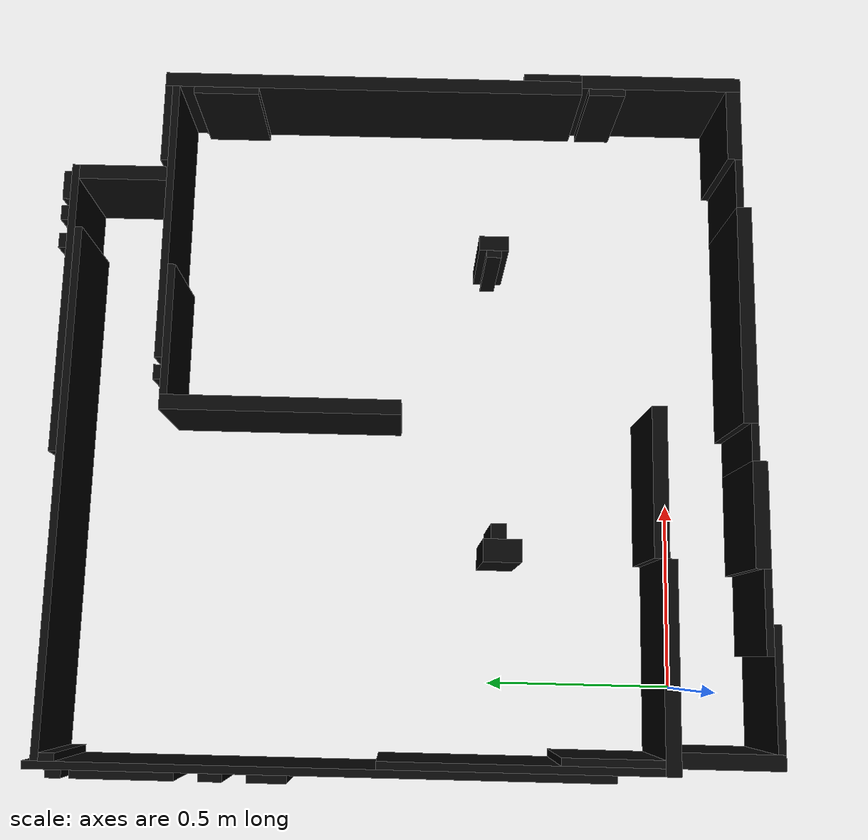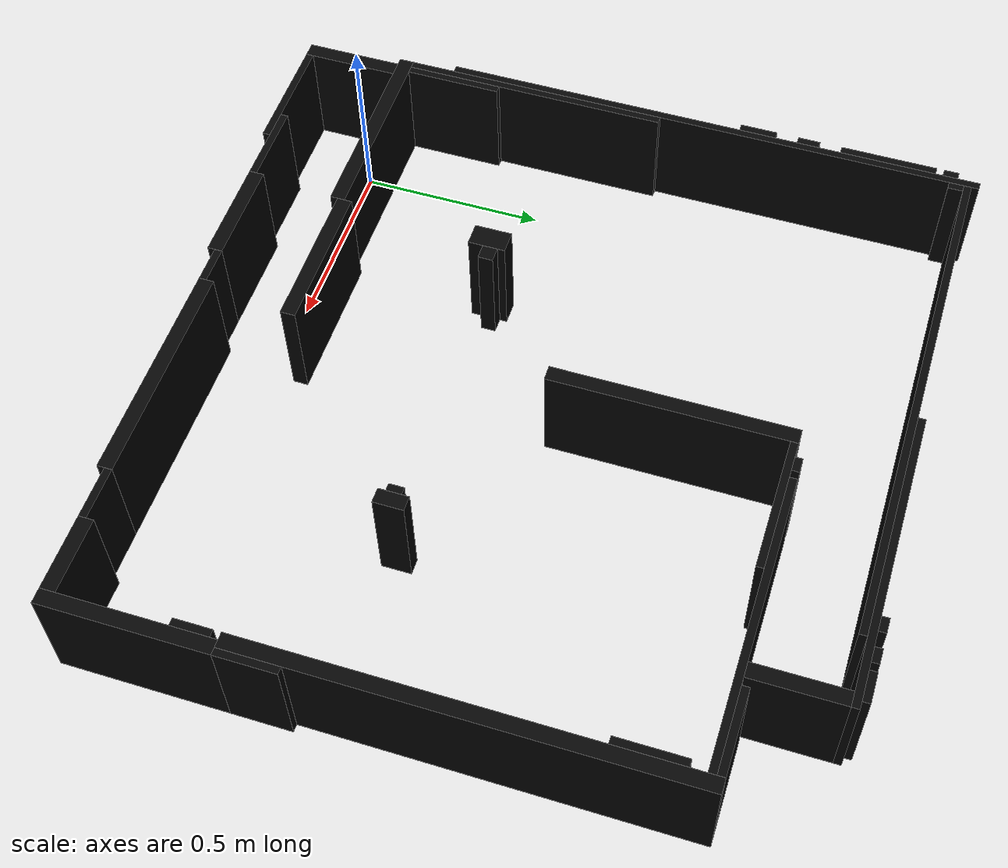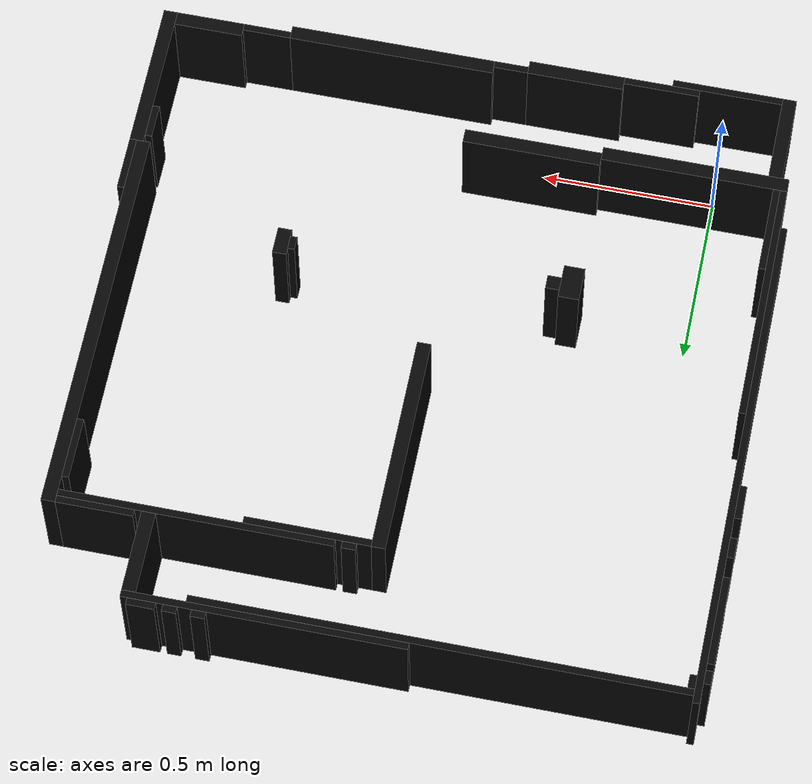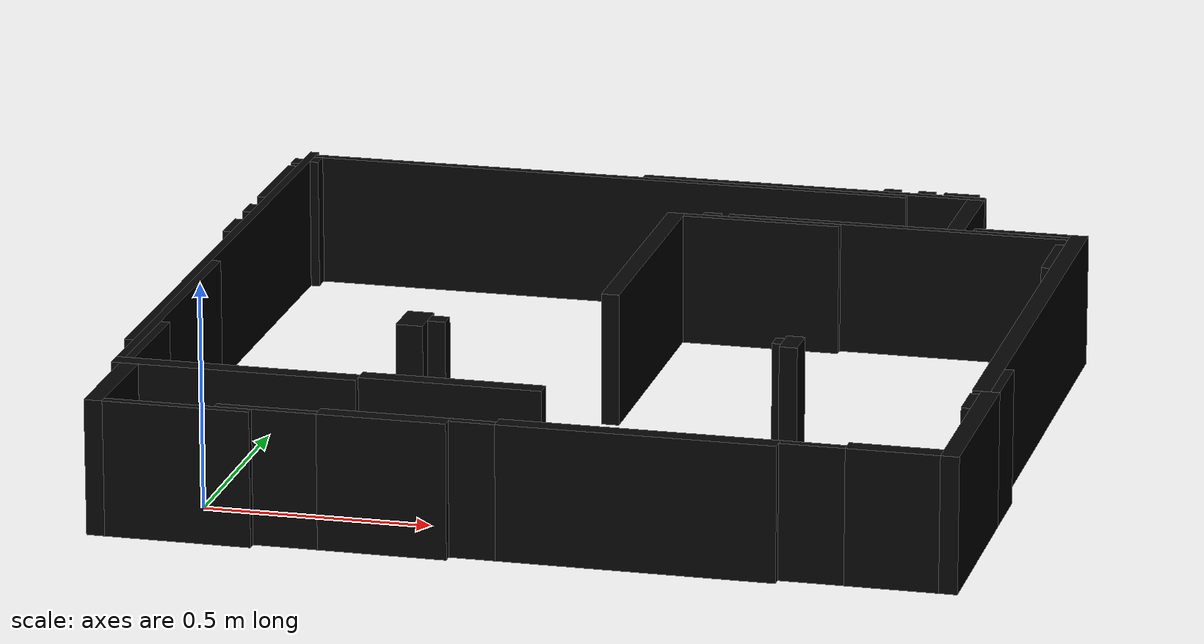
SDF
<?xml version="1.0" ?>
<sdf version="1.9">
  <world name="arena_shared_walls">
    <physics name="1ms" type="ignored"><max_step_size>0.001</max_step_size><real_time_factor>1.0</real_time_factor></physics>
    <plugin filename="gz-sim-physics-system" name="gz::sim::systems::Physics"/>
    <plugin filename="gz-sim-user-commands-system" name="gz::sim::systems::UserCommands"/>
    <plugin filename="gz-sim-scene-broadcaster-system" name="gz::sim::systems::SceneBroadcaster"/>
    <light name="sun" type="directional"><pose>0 0 10 0 0 0</pose><diffuse>1 1 1 1</diffuse><specular>0.2 0.2 0.2 1</specular><direction>-0.5 0.5 -1</direction></light>
    <model name="walls">
      <static>true</static>
      <link name="wall_0">
        <pose>1.6290 0.8540 0.1500 0 0 0</pose>
        <collision name="collision"><geometry><box><size>0.0400 1.1600 0.3000</size></box></geometry></collision>
        <visual name="visual"><geometry><box><size>0.0400 1.1600 0.3000</size></box></geometry><material><ambient>0.02 0.02 0.02 1</ambient><diffuse>0.02 0.02 0.02 1</diffuse></material></visual>
      </link>
      <link name="wall_1">
        <pose>-0.2210 0.9340 0.1500 0 0 0</pose>
        <collision name="collision"><geometry><box><size>0.0200 1.4800 0.3000</size></box></geometry></collision>
        <visual name="visual"><geometry><box><size>0.0200 1.4800 0.3000</size></box></geometry><material><ambient>0.02 0.02 0.02 1</ambient><diffuse>0.02 0.02 0.02 1</diffuse></material></visual>
      </link>
      <link name="wall_2">
        <pose>0.4890 1.6440 0.1500 0 0 0</pose>
        <collision name="collision"><geometry><box><size>1.4000 0.0200 0.3000</size></box></geometry></collision>
        <visual name="visual"><geometry><box><size>1.4000 0.0200 0.3000</size></box></geometry><material><ambient>0.02 0.02 0.02 1</ambient><diffuse>0.02 0.02 0.02 1</diffuse></material></visual>
      </link>
      <link name="wall_3">
        <pose>0.7090 1.0740 0.1500 0 0 0</pose>
        <collision name="collision"><geometry><box><size>0.0400 0.6400 0.3000</size></box></geometry></collision>
        <visual name="visual"><geometry><box><size>0.0400 0.6400 0.3000</size></box></geometry><material><ambient>0.02 0.02 0.02 1</ambient><diffuse>0.02 0.02 0.02 1</diffuse></material></visual>
      </link>
      <link name="wall_4">
        <pose>0.9890 -0.1660 0.1500 0 0 0</pose>
        <collision name="collision"><geometry><box><size>0.6000 0.0400 0.3000</size></box></geometry></collision>
        <visual name="visual"><geometry><box><size>0.6000 0.0400 0.3000</size></box></geometry><material><ambient>0.02 0.02 0.02 1</ambient><diffuse>0.02 0.02 0.02 1</diffuse></material></visual>
      </link>
      <link name="wall_5">
        <pose>0.0590 0.0540 0.1500 0 0 0</pose>
        <collision name="collision"><geometry><box><size>0.5400 0.0400 0.3000</size></box></geometry></collision>
        <visual name="visual"><geometry><box><size>0.5400 0.0400 0.3000</size></box></geometry><material><ambient>0.02 0.02 0.02 1</ambient><diffuse>0.02 0.02 0.02 1</diffuse></material></visual>
      </link>
      <link name="wall_6">
        <pose>1.6490 0.0540 0.1500 0 0 0</pose>
        <collision name="collision"><geometry><box><size>0.0400 0.4400 0.3000</size></box></geometry></collision>
        <visual name="visual"><geometry><box><size>0.0400 0.4400 0.3000</size></box></geometry><material><ambient>0.02 0.02 0.02 1</ambient><diffuse>0.02 0.02 0.02 1</diffuse></material></visual>
      </link>
      <link name="wall_7">
        <pose>0.9690 1.6640 0.1500 0 0 0</pose>
        <collision name="collision"><geometry><box><size>0.8000 0.0200 0.3000</size></box></geometry></collision>
        <visual name="visual"><geometry><box><size>0.8000 0.0200 0.3000</size></box></geometry><material><ambient>0.02 0.02 0.02 1</ambient><diffuse>0.02 0.02 0.02 1</diffuse></material></visual>
      </link>
      <link name="wall_8">
        <pose>0.5290 0.0740 0.1500 0 0 0</pose>
        <collision name="collision"><geometry><box><size>0.4000 0.0400 0.3000</size></box></geometry></collision>
        <visual name="visual"><geometry><box><size>0.4000 0.0400 0.3000</size></box></geometry><material><ambient>0.02 0.02 0.02 1</ambient><diffuse>0.02 0.02 0.02 1</diffuse></material></visual>
      </link>
      <link name="wall_9">
        <pose>1.2190 1.4040 0.1500 0 0 0</pose>
        <collision name="collision"><geometry><box><size>0.7800 0.0200 0.3000</size></box></geometry></collision>
        <visual name="visual"><geometry><box><size>0.7800 0.0200 0.3000</size></box></geometry><material><ambient>0.02 0.02 0.02 1</ambient><diffuse>0.02 0.02 0.02 1</diffuse></material></visual>
      </link>
      <link name="wall_10">
        <pose>-0.2010 0.4340 0.1500 0 0 0</pose>
        <collision name="collision"><geometry><box><size>0.0200 0.7200 0.3000</size></box></geometry></collision>
        <visual name="visual"><geometry><box><size>0.0200 0.7200 0.3000</size></box></geometry><material><ambient>0.02 0.02 0.02 1</ambient><diffuse>0.02 0.02 0.02 1</diffuse></material></visual>
      </link>
      <link name="wall_11">
        <pose>0.4490 -0.1860 0.1500 0 0 0</pose>
        <collision name="collision"><geometry><box><size>0.2800 0.0400 0.3000</size></box></geometry></collision>
        <visual name="visual"><geometry><box><size>0.2800 0.0400 0.3000</size></box></geometry><material><ambient>0.02 0.02 0.02 1</ambient><diffuse>0.02 0.02 0.02 1</diffuse></material></visual>
      </link>
      <link name="wall_12">
        <pose>-0.1710 -0.0960 0.1500 0 0 0</pose>
        <collision name="collision"><geometry><box><size>0.0400 0.2600 0.3000</size></box></geometry></collision>
        <visual name="visual"><geometry><box><size>0.0400 0.2600 0.3000</size></box></geometry><material><ambient>0.02 0.02 0.02 1</ambient><diffuse>0.02 0.02 0.02 1</diffuse></material></visual>
      </link>
      <link name="wall_13">
        <pose>1.3490 1.5340 0.1500 0 0 0</pose>
        <collision name="collision"><geometry><box><size>0.0400 0.2400 0.3000</size></box></geometry></collision>
        <visual name="visual"><geometry><box><size>0.0400 0.2400 0.3000</size></box></geometry><material><ambient>0.02 0.02 0.02 1</ambient><diffuse>0.02 0.02 0.02 1</diffuse></material></visual>
      </link>
      <link name="wall_14">
        <pose>1.5290 -0.1460 0.1500 0 0 0</pose>
        <collision name="collision"><geometry><box><size>0.2000 0.0400 0.3000</size></box></geometry></collision>
        <visual name="visual"><geometry><box><size>0.2000 0.0400 0.3000</size></box></geometry><material><ambient>0.02 0.02 0.02 1</ambient><diffuse>0.02 0.02 0.02 1</diffuse></material></visual>
      </link>
      <link name="wall_15">
        <pose>0.9090 1.3840 0.1500 0 0 0</pose>
        <collision name="collision"><geometry><box><size>0.3600 0.0200 0.3000</size></box></geometry></collision>
        <visual name="visual"><geometry><box><size>0.3600 0.0200 0.3000</size></box></geometry><material><ambient>0.02 0.02 0.02 1</ambient><diffuse>0.02 0.02 0.02 1</diffuse></material></visual>
      </link>
      <link name="wall_16">
        <pose>0.0090 -0.2160 0.1500 0 0 0</pose>
        <collision name="collision"><geometry><box><size>0.3200 0.0200 0.3000</size></box></geometry></collision>
        <visual name="visual"><geometry><box><size>0.3200 0.0200 0.3000</size></box></geometry><material><ambient>0.02 0.02 0.02 1</ambient><diffuse>0.02 0.02 0.02 1</diffuse></material></visual>
      </link>
      <link name="wall_17">
        <pose>0.3390 0.4840 0.1500 0 0 0</pose>
        <collision name="collision"><geometry><box><size>0.0600 0.1000 0.3000</size></box></geometry></collision>
        <visual name="visual"><geometry><box><size>0.0600 0.1000 0.3000</size></box></geometry><material><ambient>0.02 0.02 0.02 1</ambient><diffuse>0.02 0.02 0.02 1</diffuse></material></visual>
      </link>
      <link name="wall_18">
        <pose>-0.2410 1.4240 0.1500 0 0 0</pose>
        <collision name="collision"><geometry><box><size>0.0200 0.2600 0.3000</size></box></geometry></collision>
        <visual name="visual"><geometry><box><size>0.0200 0.2600 0.3000</size></box></geometry><material><ambient>0.02 0.02 0.02 1</ambient><diffuse>0.02 0.02 0.02 1</diffuse></material></visual>
      </link>
      <link name="wall_19">
        <pose>-0.1810 0.2040 0.1500 0 0 0</pose>
        <collision name="collision"><geometry><box><size>0.0200 0.2600 0.3000</size></box></geometry></collision>
        <visual name="visual"><geometry><box><size>0.0200 0.2600 0.3000</size></box></geometry><material><ambient>0.02 0.02 0.02 1</ambient><diffuse>0.02 0.02 0.02 1</diffuse></material></visual>
      </link>
      <link name="wall_20">
        <pose>1.4990 1.4240 0.1500 0 0 0</pose>
        <collision name="collision"><geometry><box><size>0.2200 0.0200 0.3000</size></box></geometry></collision>
        <visual name="visual"><geometry><box><size>0.2200 0.0200 0.3000</size></box></geometry><material><ambient>0.02 0.02 0.02 1</ambient><diffuse>0.02 0.02 0.02 1</diffuse></material></visual>
      </link>
      <link name="wall_21">
        <pose>0.1990 -0.1960 0.1500 0 0 0</pose>
        <collision name="collision"><geometry><box><size>0.2200 0.0200 0.3000</size></box></geometry></collision>
        <visual name="visual"><geometry><box><size>0.2200 0.0200 0.3000</size></box></geometry><material><ambient>0.02 0.02 0.02 1</ambient><diffuse>0.02 0.02 0.02 1</diffuse></material></visual>
      </link>
      <link name="wall_22">
        <pose>1.5990 1.2640 0.1500 0 0 0</pose>
        <collision name="collision"><geometry><box><size>0.0200 0.1800 0.3000</size></box></geometry></collision>
        <visual name="visual"><geometry><box><size>0.0200 0.1800 0.3000</size></box></geometry><material><ambient>0.02 0.02 0.02 1</ambient><diffuse>0.02 0.02 0.02 1</diffuse></material></visual>
      </link>
      <link name="wall_23">
        <pose>1.1690 0.5140 0.1500 0 0 0</pose>
        <collision name="collision"><geometry><box><size>0.0400 0.0800 0.3000</size></box></geometry></collision>
        <visual name="visual"><geometry><box><size>0.0400 0.0800 0.3000</size></box></geometry><material><ambient>0.02 0.02 0.02 1</ambient><diffuse>0.02 0.02 0.02 1</diffuse></material></visual>
      </link>
      <link name="wall_24">
        <pose>1.6590 0.3540 0.1500 0 0 0</pose>
        <collision name="collision"><geometry><box><size>0.0200 0.1600 0.3000</size></box></geometry></collision>
        <visual name="visual"><geometry><box><size>0.0200 0.1600 0.3000</size></box></geometry><material><ambient>0.02 0.02 0.02 1</ambient><diffuse>0.02 0.02 0.02 1</diffuse></material></visual>
      </link>
      <link name="wall_25">
        <pose>1.3590 -0.1560 0.1500 0 0 0</pose>
        <collision name="collision"><geometry><box><size>0.1400 0.0200 0.3000</size></box></geometry></collision>
        <visual name="visual"><geometry><box><size>0.1400 0.0200 0.3000</size></box></geometry><material><ambient>0.02 0.02 0.02 1</ambient><diffuse>0.02 0.02 0.02 1</diffuse></material></visual>
      </link>
      <link name="wall_26">
        <pose>-0.2410 1.0640 0.1500 0 0 0</pose>
        <collision name="collision"><geometry><box><size>0.0200 0.1000 0.3000</size></box></geometry></collision>
        <visual name="visual"><geometry><box><size>0.0200 0.1000 0.3000</size></box></geometry><material><ambient>0.02 0.02 0.02 1</ambient><diffuse>0.02 0.02 0.02 1</diffuse></material></visual>
      </link>
      <link name="wall_27">
        <pose>1.6190 0.2040 0.1500 0 0 0</pose>
        <collision name="collision"><geometry><box><size>0.0200 0.1000 0.3000</size></box></geometry></collision>
        <visual name="visual"><geometry><box><size>0.0200 0.1000 0.3000</size></box></geometry><material><ambient>0.02 0.02 0.02 1</ambient><diffuse>0.02 0.02 0.02 1</diffuse></material></visual>
      </link>
      <link name="wall_28">
        <pose>0.6390 -0.1760 0.1500 0 0 0</pose>
        <collision name="collision"><geometry><box><size>0.1000 0.0200 0.3000</size></box></geometry></collision>
        <visual name="visual"><geometry><box><size>0.1000 0.0200 0.3000</size></box></geometry><material><ambient>0.02 0.02 0.02 1</ambient><diffuse>0.02 0.02 0.02 1</diffuse></material></visual>
      </link>
      <link name="wall_29">
        <pose>1.3090 1.6840 0.1500 0 0 0</pose>
        <collision name="collision"><geometry><box><size>0.0800 0.0200 0.3000</size></box></geometry></collision>
        <visual name="visual"><geometry><box><size>0.0800 0.0200 0.3000</size></box></geometry><material><ambient>0.02 0.02 0.02 1</ambient><diffuse>0.02 0.02 0.02 1</diffuse></material></visual>
      </link>
      <link name="wall_30">
        <pose>0.3890 0.4940 0.1500 0 0 0</pose>
        <collision name="collision"><geometry><box><size>0.0400 0.0400 0.3000</size></box></geometry></collision>
        <visual name="visual"><geometry><box><size>0.0400 0.0400 0.3000</size></box></geometry><material><ambient>0.02 0.02 0.02 1</ambient><diffuse>0.02 0.02 0.02 1</diffuse></material></visual>
      </link>
      <link name="wall_31">
        <pose>-0.2410 1.2040 0.1500 0 0 0</pose>
        <collision name="collision"><geometry><box><size>0.0200 0.0600 0.3000</size></box></geometry></collision>
        <visual name="visual"><geometry><box><size>0.0200 0.0600 0.3000</size></box></geometry><material><ambient>0.02 0.02 0.02 1</ambient><diffuse>0.02 0.02 0.02 1</diffuse></material></visual>
      </link>
      <link name="wall_32">
        <pose>1.1490 1.6840 0.1500 0 0 0</pose>
        <collision name="collision"><geometry><box><size>0.0400 0.0200 0.3000</size></box></geometry></collision>
        <visual name="visual"><geometry><box><size>0.0400 0.0200 0.3000</size></box></geometry><material><ambient>0.02 0.02 0.02 1</ambient><diffuse>0.02 0.02 0.02 1</diffuse></material></visual>
      </link>
      <link name="wall_33">
        <pose>1.2290 1.6840 0.1500 0 0 0</pose>
        <collision name="collision"><geometry><box><size>0.0400 0.0200 0.3000</size></box></geometry></collision>
        <visual name="visual"><geometry><box><size>0.0400 0.0200 0.3000</size></box></geometry><material><ambient>0.02 0.02 0.02 1</ambient><diffuse>0.02 0.02 0.02 1</diffuse></material></visual>
      </link>
      <link name="wall_34">
        <pose>-0.2010 1.6140 0.1500 0 0 0</pose>
        <collision name="collision"><geometry><box><size>0.0200 0.0400 0.3000</size></box></geometry></collision>
        <visual name="visual"><geometry><box><size>0.0200 0.0400 0.3000</size></box></geometry><material><ambient>0.02 0.02 0.02 1</ambient><diffuse>0.02 0.02 0.02 1</diffuse></material></visual>
      </link>
      <link name="wall_35">
        <pose>-0.2410 1.5940 0.1500 0 0 0</pose>
        <collision name="collision"><geometry><box><size>0.0200 0.0400 0.3000</size></box></geometry></collision>
        <visual name="visual"><geometry><box><size>0.0200 0.0400 0.3000</size></box></geometry><material><ambient>0.02 0.02 0.02 1</ambient><diffuse>0.02 0.02 0.02 1</diffuse></material></visual>
      </link>
      <link name="wall_36">
        <pose>0.7890 1.4040 0.1500 0 0 0</pose>
        <collision name="collision"><geometry><box><size>0.0400 0.0200 0.3000</size></box></geometry></collision>
        <visual name="visual"><geometry><box><size>0.0400 0.0200 0.3000</size></box></geometry><material><ambient>0.02 0.02 0.02 1</ambient><diffuse>0.02 0.02 0.02 1</diffuse></material></visual>
      </link>
      <link name="wall_37">
        <pose>1.1390 0.5140 0.1500 0 0 0</pose>
        <collision name="collision"><geometry><box><size>0.0200 0.0400 0.3000</size></box></geometry></collision>
        <visual name="visual"><geometry><box><size>0.0200 0.0400 0.3000</size></box></geometry><material><ambient>0.02 0.02 0.02 1</ambient><diffuse>0.02 0.02 0.02 1</diffuse></material></visual>
      </link>
    </model>
  </world>
</sdf>
